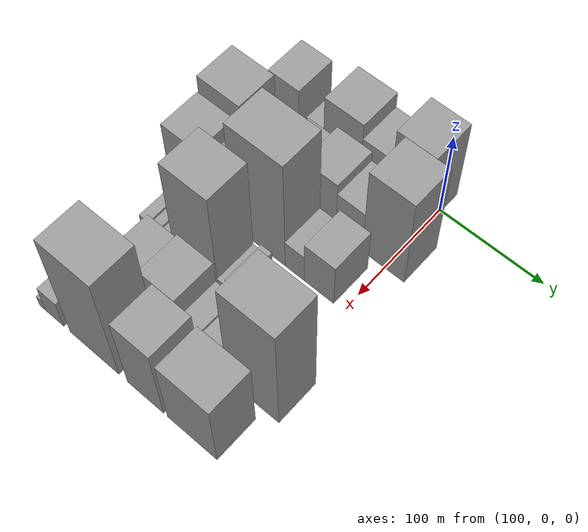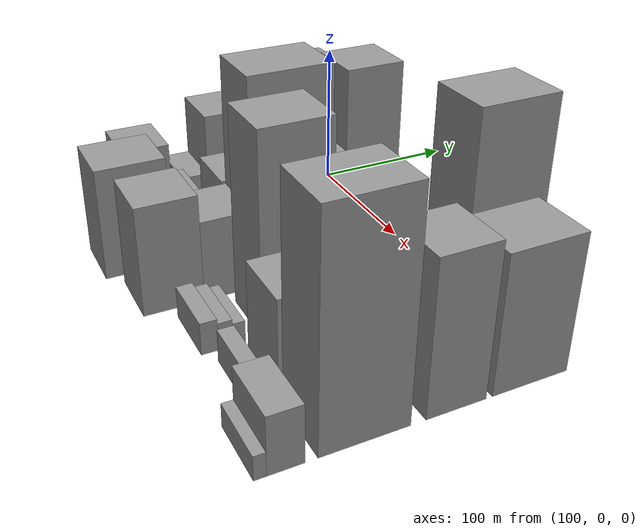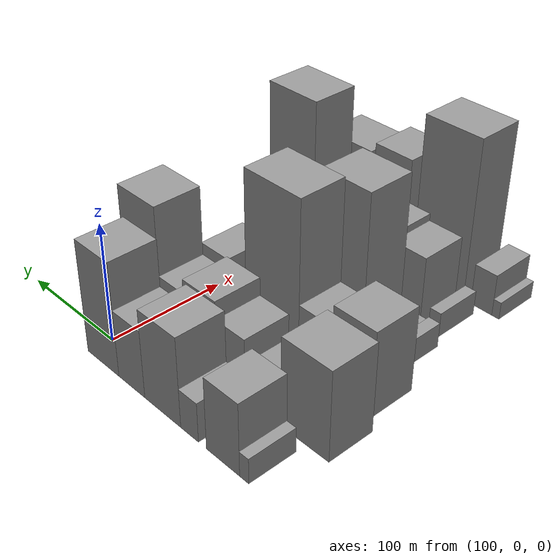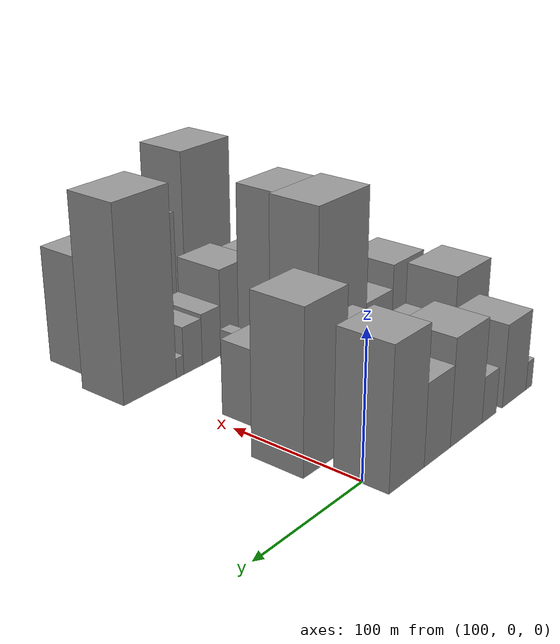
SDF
<sdf version="1.6">
 <world name="default">
  <model name="building_19">
   <static>1</static>
   <pose>100.0000 -166.8143 0 0.000000 0.000000 0.000000</pose>
   <link name="link">
    <pose>0 0 10.50 0 0 0</pose>
    <collision name="collision"><geometry><box><size>40.0000 8.5957 21.0000</size></box></geometry></collision>
    <visual name="visual">
     <cast_shadows>0</cast_shadows>
     <geometry><box><size>40.0000 8.5957 21.0000</size></box></geometry>
     <material>
      <script>
       <uri>model://grey_wall/materials/scripts</uri>
       <uri>model://grey_wall/materials/textures</uri>
       <name>vrc/grey_wall</name>
      </script>
     </material>
    </visual>
   </link>
  </model>
  <model name="building_20">
   <static>1</static>
   <pose>100.0000 -146.4526 0 0.000000 0.000000 0.000000</pose>
   <link name="link">
    <pose>0 0 30.00 0 0 0</pose>
    <collision name="collision"><geometry><box><size>40.0000 32.1276 60.0000</size></box></geometry></collision>
    <visual name="visual">
     <cast_shadows>0</cast_shadows>
     <geometry><box><size>40.0000 32.1276 60.0000</size></box></geometry>
     <material>
      <script>
       <uri>model://grey_wall/materials/scripts</uri>
       <uri>model://grey_wall/materials/textures</uri>
       <name>vrc/grey_wall</name>
      </script>
     </material>
    </visual>
   </link>
  </model>
  <model name="building_21">
   <static>1</static>
   <pose>100.0000 -113.3025 0 0.000000 0.000000 0.000000</pose>
   <link name="link">
    <pose>0 0 16.50 0 0 0</pose>
    <collision name="collision"><geometry><box><size>40.0000 18.1728 33.0000</size></box></geometry></collision>
    <visual name="visual">
     <cast_shadows>0</cast_shadows>
     <geometry><box><size>40.0000 18.1728 33.0000</size></box></geometry>
     <material>
      <script>
       <uri>model://grey_wall/materials/scripts</uri>
       <uri>model://grey_wall/materials/textures</uri>
       <name>vrc/grey_wall</name>
      </script>
     </material>
    </visual>
   </link>
  </model>
  <model name="building_22">
   <static>1</static>
   <pose>100.0000 -84.8160 0 0.000000 0.000000 0.000000</pose>
   <link name="link">
    <pose>0 0 37.50 0 0 0</pose>
    <collision name="collision"><geometry><box><size>40.0000 38.8002 75.0000</size></box></geometry></collision>
    <visual name="visual">
     <cast_shadows>0</cast_shadows>
     <geometry><box><size>40.0000 38.8002 75.0000</size></box></geometry>
     <material>
      <script>
       <uri>model://grey_wall/materials/scripts</uri>
       <uri>model://grey_wall/materials/textures</uri>
       <name>vrc/grey_wall</name>
      </script>
     </material>
    </visual>
   </link>
  </model>
  <model name="building_23">
   <static>1</static>
   <pose>100.0000 -50.5812 0 0.000000 0.000000 0.000000</pose>
   <link name="link">
    <pose>0 0 28.50 0 0 0</pose>
    <collision name="collision"><geometry><box><size>40.0000 29.6695 57.0000</size></box></geometry></collision>
    <visual name="visual">
     <cast_shadows>0</cast_shadows>
     <geometry><box><size>40.0000 29.6695 57.0000</size></box></geometry>
     <material>
      <script>
       <uri>model://grey_wall/materials/scripts</uri>
       <uri>model://grey_wall/materials/textures</uri>
       <name>vrc/grey_wall</name>
      </script>
     </material>
    </visual>
   </link>
  </model>
  <model name="building_24">
   <static>1</static>
   <pose>100.0000 -17.0833 0 0.000000 0.000000 0.000000</pose>
   <link name="link">
    <pose>0 0 48.00 0 0 0</pose>
    <collision name="collision"><geometry><box><size>40.0000 37.3264 96.0000</size></box></geometry></collision>
    <visual name="visual">
     <cast_shadows>0</cast_shadows>
     <geometry><box><size>40.0000 37.3264 96.0000</size></box></geometry>
     <material>
      <script>
       <uri>model://grey_wall/materials/scripts</uri>
       <uri>model://grey_wall/materials/textures</uri>
       <name>vrc/grey_wall</name>
      </script>
     </material>
    </visual>
   </link>
  </model>
  <model name="building_63">
   <static>1</static>
   <pose>149.0000 -169.5658 0 0.000000 0.000000 0.000000</pose>
   <link name="link">
    <pose>0 0 37.50 0 0 0</pose>
    <collision name="collision"><geometry><box><size>40.0000 44.2023 75.0000</size></box></geometry></collision>
    <visual name="visual">
     <cast_shadows>0</cast_shadows>
     <geometry><box><size>40.0000 44.2023 75.0000</size></box></geometry>
     <material>
      <script>
       <uri>model://grey_wall/materials/scripts</uri>
       <uri>model://grey_wall/materials/textures</uri>
       <name>vrc/grey_wall</name>
      </script>
     </material>
    </visual>
   </link>
  </model>
  <model name="building_64">
   <static>1</static>
   <pose>149.0000 -136.0340 0 0.000000 0.000000 0.000000</pose>
   <link name="link">
    <pose>0 0 22.50 0 0 0</pose>
    <collision name="collision"><geometry><box><size>40.0000 22.8614 45.0000</size></box></geometry></collision>
    <visual name="visual">
     <cast_shadows>0</cast_shadows>
     <geometry><box><size>40.0000 22.8614 45.0000</size></box></geometry>
     <material>
      <script>
       <uri>model://grey_wall/materials/scripts</uri>
       <uri>model://grey_wall/materials/textures</uri>
       <name>vrc/grey_wall</name>
      </script>
     </material>
    </visual>
   </link>
  </model>
  <model name="building_65">
   <static>1</static>
   <pose>149.0000 -118.4109 0 0.000000 0.000000 0.000000</pose>
   <link name="link">
    <pose>0 0 13.50 0 0 0</pose>
    <collision name="collision"><geometry><box><size>40.0000 12.3848 27.0000</size></box></geometry></collision>
    <visual name="visual">
     <cast_shadows>0</cast_shadows>
     <geometry><box><size>40.0000 12.3848 27.0000</size></box></geometry>
     <material>
      <script>
       <uri>model://grey_wall/materials/scripts</uri>
       <uri>model://grey_wall/materials/textures</uri>
       <name>vrc/grey_wall</name>
      </script>
     </material>
    </visual>
   </link>
  </model>
  <model name="building_66">
   <static>1</static>
   <pose>149.0000 -97.8057 0 0.000000 0.000000 0.000000</pose>
   <link name="link">
    <pose>0 0 25.50 0 0 0</pose>
    <collision name="collision"><geometry><box><size>40.0000 28.8256 51.0000</size></box></geometry></collision>
    <visual name="visual">
     <cast_shadows>0</cast_shadows>
     <geometry><box><size>40.0000 28.8256 51.0000</size></box></geometry>
     <material>
      <script>
       <uri>model://grey_wall/materials/scripts</uri>
       <uri>model://grey_wall/materials/textures</uri>
       <name>vrc/grey_wall</name>
      </script>
     </material>
    </visual>
   </link>
  </model>
  <model name="building_67">
   <static>1</static>
   <pose>149.0000 -66.2988 0 0.000000 0.000000 0.000000</pose>
   <link name="link">
    <pose>0 0 33.00 0 0 0</pose>
    <collision name="collision"><geometry><box><size>40.0000 34.1881 66.0000</size></box></geometry></collision>
    <visual name="visual">
     <cast_shadows>0</cast_shadows>
     <geometry><box><size>40.0000 34.1881 66.0000</size></box></geometry>
     <material>
      <script>
       <uri>model://grey_wall/materials/scripts</uri>
       <uri>model://grey_wall/materials/textures</uri>
       <name>vrc/grey_wall</name>
      </script>
     </material>
    </visual>
   </link>
  </model>
  <model name="building_68">
   <static>1</static>
   <pose>149.0000 -35.6842 0 0.000000 0.000000 0.000000</pose>
   <link name="link">
    <pose>0 0 27.00 0 0 0</pose>
    <collision name="collision"><geometry><box><size>40.0000 27.0412 54.0000</size></box></geometry></collision>
    <visual name="visual">
     <cast_shadows>0</cast_shadows>
     <geometry><box><size>40.0000 27.0412 54.0000</size></box></geometry>
     <material>
      <script>
       <uri>model://grey_wall/materials/scripts</uri>
       <uri>model://grey_wall/materials/textures</uri>
       <name>vrc/grey_wall</name>
      </script>
     </material>
    </visual>
   </link>
  </model>
  <model name="building_69">
   <static>1</static>
   <pose>149.0000 -1.4894 0 0.000000 0.000000 0.000000</pose>
   <link name="link">
    <pose>0 0 55.50 0 0 0</pose>
    <collision name="collision"><geometry><box><size>40.0000 41.3484 111.0000</size></box></geometry></collision>
    <visual name="visual">
     <cast_shadows>0</cast_shadows>
     <geometry><box><size>40.0000 41.3484 111.0000</size></box></geometry>
     <material>
      <script>
       <uri>model://grey_wall/materials/scripts</uri>
       <uri>model://grey_wall/materials/textures</uri>
       <name>vrc/grey_wall</name>
      </script>
     </material>
    </visual>
   </link>
  </model>
  <model name="building_116">
   <static>1</static>
   <pose>198.0000 -163.3867 0 0.000000 0.000000 0.000000</pose>
   <link name="link">
    <pose>0 0 36.00 0 0 0</pose>
    <collision name="collision"><geometry><box><size>40.0000 37.8140 72.0000</size></box></geometry></collision>
    <visual name="visual">
     <cast_shadows>0</cast_shadows>
     <geometry><box><size>40.0000 37.8140 72.0000</size></box></geometry>
     <material>
      <script>
       <uri>model://grey_wall/materials/scripts</uri>
       <uri>model://grey_wall/materials/textures</uri>
       <name>vrc/grey_wall</name>
      </script>
     </material>
    </visual>
   </link>
  </model>
  <model name="building_117">
   <static>1</static>
   <pose>198.0000 -128.5508 0 0.000000 0.000000 0.000000</pose>
   <link name="link">
    <pose>0 0 27.00 0 0 0</pose>
    <collision name="collision"><geometry><box><size>40.0000 31.8577 54.0000</size></box></geometry></collision>
    <visual name="visual">
     <cast_shadows>0</cast_shadows>
     <geometry><box><size>40.0000 31.8577 54.0000</size></box></geometry>
     <material>
      <script>
       <uri>model://grey_wall/materials/scripts</uri>
       <uri>model://grey_wall/materials/textures</uri>
       <name>vrc/grey_wall</name>
      </script>
     </material>
    </visual>
   </link>
  </model>
  <model name="building_118">
   <static>1</static>
   <pose>198.0000 -85.4054 0 0.000000 0.000000 0.000000</pose>
   <link name="link">
    <pose>0 0 69.00 0 0 0</pose>
    <collision name="collision"><geometry><box><size>40.0000 54.4332 138.0000</size></box></geometry></collision>
    <visual name="visual">
     <cast_shadows>0</cast_shadows>
     <geometry><box><size>40.0000 54.4332 138.0000</size></box></geometry>
     <material>
      <script>
       <uri>model://grey_wall/materials/scripts</uri>
       <uri>model://grey_wall/materials/textures</uri>
       <name>vrc/grey_wall</name>
      </script>
     </material>
    </visual>
   </link>
  </model>
  <model name="building_119">
   <static>1</static>
   <pose>198.0000 -48.5401 0 0.000000 0.000000 0.000000</pose>
   <link name="link">
    <pose>0 0 18.00 0 0 0</pose>
    <collision name="collision"><geometry><box><size>40.0000 19.2974 36.0000</size></box></geometry></collision>
    <visual name="visual">
     <cast_shadows>0</cast_shadows>
     <geometry><box><size>40.0000 19.2974 36.0000</size></box></geometry>
     <material>
      <script>
       <uri>model://grey_wall/materials/scripts</uri>
       <uri>model://grey_wall/materials/textures</uri>
       <name>vrc/grey_wall</name>
      </script>
     </material>
    </visual>
   </link>
  </model>
  <model name="building_120">
   <static>1</static>
   <pose>198.0000 -24.1284 0 0.000000 0.000000 0.000000</pose>
   <link name="link">
    <pose>0 0 27.00 0 0 0</pose>
    <collision name="collision"><geometry><box><size>40.0000 29.5259 54.0000</size></box></geometry></collision>
    <visual name="visual">
     <cast_shadows>0</cast_shadows>
     <geometry><box><size>40.0000 29.5259 54.0000</size></box></geometry>
     <material>
      <script>
       <uri>model://grey_wall/materials/scripts</uri>
       <uri>model://grey_wall/materials/textures</uri>
       <name>vrc/grey_wall</name>
      </script>
     </material>
    </visual>
   </link>
  </model>
  <model name="building_165">
   <static>1</static>
   <pose>247.0000 -159.1917 0 0.000000 0.000000 0.000000</pose>
   <link name="link">
    <pose>0 0 10.50 0 0 0</pose>
    <collision name="collision"><geometry><box><size>40.0000 10.1485 21.0000</size></box></geometry></collision>
    <visual name="visual">
     <cast_shadows>0</cast_shadows>
     <geometry><box><size>40.0000 10.1485 21.0000</size></box></geometry>
     <material>
      <script>
       <uri>model://grey_wall/materials/scripts</uri>
       <uri>model://grey_wall/materials/textures</uri>
       <name>vrc/grey_wall</name>
      </script>
     </material>
    </visual>
   </link>
  </model>
  <model name="building_166">
   <static>1</static>
   <pose>247.0000 -149.6743 0 0.000000 0.000000 0.000000</pose>
   <link name="link">
    <pose>0 0 9.00 0 0 0</pose>
    <collision name="collision"><geometry><box><size>40.0000 8.8861 18.0000</size></box></geometry></collision>
    <visual name="visual">
     <cast_shadows>0</cast_shadows>
     <geometry><box><size>40.0000 8.8861 18.0000</size></box></geometry>
     <material>
      <script>
       <uri>model://grey_wall/materials/scripts</uri>
       <uri>model://grey_wall/materials/textures</uri>
       <name>vrc/grey_wall</name>
      </script>
     </material>
    </visual>
   </link>
  </model>
  <model name="building_167">
   <static>1</static>
   <pose>247.0000 -141.5087 0 0.000000 0.000000 0.000000</pose>
   <link name="link">
    <pose>0 0 7.50 0 0 0</pose>
    <collision name="collision"><geometry><box><size>40.0000 7.4452 15.0000</size></box></geometry></collision>
    <visual name="visual">
     <cast_shadows>0</cast_shadows>
     <geometry><box><size>40.0000 7.4452 15.0000</size></box></geometry>
     <material>
      <script>
       <uri>model://grey_wall/materials/scripts</uri>
       <uri>model://grey_wall/materials/textures</uri>
       <name>vrc/grey_wall</name>
      </script>
     </material>
    </visual>
   </link>
  </model>
  <model name="building_168">
   <static>1</static>
   <pose>247.0000 -105.0985 0 0.000000 0.000000 0.000000</pose>
   <link name="link">
    <pose>0 0 64.50 0 0 0</pose>
    <collision name="collision"><geometry><box><size>40.0000 45.3751 129.0000</size></box></geometry></collision>
    <visual name="visual">
     <cast_shadows>0</cast_shadows>
     <geometry><box><size>40.0000 45.3751 129.0000</size></box></geometry>
     <material>
      <script>
       <uri>model://grey_wall/materials/scripts</uri>
       <uri>model://grey_wall/materials/textures</uri>
       <name>vrc/grey_wall</name>
      </script>
     </material>
    </visual>
   </link>
  </model>
  <model name="building_169">
   <static>1</static>
   <pose>247.0000 -78.2397 0 0.000000 0.000000 0.000000</pose>
   <link name="link">
    <pose>0 0 9.00 0 0 0</pose>
    <collision name="collision"><geometry><box><size>40.0000 8.3426 18.0000</size></box></geometry></collision>
    <visual name="visual">
     <cast_shadows>0</cast_shadows>
     <geometry><box><size>40.0000 8.3426 18.0000</size></box></geometry>
     <material>
      <script>
       <uri>model://grey_wall/materials/scripts</uri>
       <uri>model://grey_wall/materials/textures</uri>
       <name>vrc/grey_wall</name>
      </script>
     </material>
    </visual>
   </link>
  </model>
  <model name="building_170">
   <static>1</static>
   <pose>247.0000 -68.4875 0 0.000000 0.000000 0.000000</pose>
   <link name="link">
    <pose>0 0 13.50 0 0 0</pose>
    <collision name="collision"><geometry><box><size>40.0000 11.1616 27.0000</size></box></geometry></collision>
    <visual name="visual">
     <cast_shadows>0</cast_shadows>
     <geometry><box><size>40.0000 11.1616 27.0000</size></box></geometry>
     <material>
      <script>
       <uri>model://grey_wall/materials/scripts</uri>
       <uri>model://grey_wall/materials/textures</uri>
       <name>vrc/grey_wall</name>
      </script>
     </material>
    </visual>
   </link>
  </model>
  <model name="building_207">
   <static>1</static>
   <pose>296.0000 -152.7512 0 0.000000 0.000000 0.000000</pose>
   <link name="link">
    <pose>0 0 10.50 0 0 0</pose>
    <collision name="collision"><geometry><box><size>40.0000 9.9239 21.0000</size></box></geometry></collision>
    <visual name="visual">
     <cast_shadows>0</cast_shadows>
     <geometry><box><size>40.0000 9.9239 21.0000</size></box></geometry>
     <material>
      <script>
       <uri>model://grey_wall/materials/scripts</uri>
       <uri>model://grey_wall/materials/textures</uri>
       <name>vrc/grey_wall</name>
      </script>
     </material>
    </visual>
   </link>
  </model>
  <model name="building_208">
   <static>1</static>
   <pose>296.0000 -124.3588 0 0.000000 0.000000 0.000000</pose>
   <link name="link">
    <pose>0 0 30.00 0 0 0</pose>
    <collision name="collision"><geometry><box><size>40.0000 30.8609 60.0000</size></box></geometry></collision>
    <visual name="visual">
     <cast_shadows>0</cast_shadows>
     <geometry><box><size>40.0000 30.8609 60.0000</size></box></geometry>
     <material>
      <script>
       <uri>model://grey_wall/materials/scripts</uri>
       <uri>model://grey_wall/materials/textures</uri>
       <name>vrc/grey_wall</name>
      </script>
     </material>
    </visual>
   </link>
  </model>
  <model name="building_209">
   <static>1</static>
   <pose>296.0000 -91.1146 0 0.000000 0.000000 0.000000</pose>
   <link name="link">
    <pose>0 0 33.00 0 0 0</pose>
    <collision name="collision"><geometry><box><size>40.0000 35.6274 66.0000</size></box></geometry></collision>
    <visual name="visual">
     <cast_shadows>0</cast_shadows>
     <geometry><box><size>40.0000 35.6274 66.0000</size></box></geometry>
     <material>
      <script>
       <uri>model://grey_wall/materials/scripts</uri>
       <uri>model://grey_wall/materials/textures</uri>
       <name>vrc/grey_wall</name>
      </script>
     </material>
    </visual>
   </link>
  </model>
  <model name="building_210">
   <static>1</static>
   <pose>296.0000 -63.4068 0 0.000000 0.000000 0.000000</pose>
   <link name="link">
    <pose>0 0 19.50 0 0 0</pose>
    <collision name="collision"><geometry><box><size>40.0000 19.7883 39.0000</size></box></geometry></collision>
    <visual name="visual">
     <cast_shadows>0</cast_shadows>
     <geometry><box><size>40.0000 19.7883 39.0000</size></box></geometry>
     <material>
      <script>
       <uri>model://grey_wall/materials/scripts</uri>
       <uri>model://grey_wall/materials/textures</uri>
       <name>vrc/grey_wall</name>
      </script>
     </material>
    </visual>
   </link>
  </model>
  <model name="building_211">
   <static>1</static>
   <pose>296.0000 -44.0047 0 0.000000 0.000000 0.000000</pose>
   <link name="link">
    <pose>0 0 18.00 0 0 0</pose>
    <collision name="collision"><geometry><box><size>40.0000 19.0159 36.0000</size></box></geometry></collision>
    <visual name="visual">
     <cast_shadows>0</cast_shadows>
     <geometry><box><size>40.0000 19.0159 36.0000</size></box></geometry>
     <material>
      <script>
       <uri>model://grey_wall/materials/scripts</uri>
       <uri>model://grey_wall/materials/textures</uri>
       <name>vrc/grey_wall</name>
      </script>
     </material>
    </visual>
   </link>
  </model>
  <model name="building_212">
   <static>1</static>
   <pose>296.0000 -30.7629 0 0.000000 0.000000 0.000000</pose>
   <link name="link">
    <pose>0 0 7.50 0 0 0</pose>
    <collision name="collision"><geometry><box><size>40.0000 7.4677 15.0000</size></box></geometry></collision>
    <visual name="visual">
     <cast_shadows>0</cast_shadows>
     <geometry><box><size>40.0000 7.4677 15.0000</size></box></geometry>
     <material>
      <script>
       <uri>model://grey_wall/materials/scripts</uri>
       <uri>model://grey_wall/materials/textures</uri>
       <name>vrc/grey_wall</name>
      </script>
     </material>
    </visual>
   </link>
  </model>
  <model name="building_213">
   <static>1</static>
   <pose>296.0000 -1.9973 0 0.000000 0.000000 0.000000</pose>
   <link name="link">
    <pose>0 0 70.50 0 0 0</pose>
    <collision name="collision"><geometry><box><size>40.0000 50.0634 141.0000</size></box></geometry></collision>
    <visual name="visual">
     <cast_shadows>0</cast_shadows>
     <geometry><box><size>40.0000 50.0634 141.0000</size></box></geometry>
     <material>
      <script>
       <uri>model://grey_wall/materials/scripts</uri>
       <uri>model://grey_wall/materials/textures</uri>
       <name>vrc/grey_wall</name>
      </script>
     </material>
    </visual>
   </link>
  </model>
  <model name="building_260">
   <static>1</static>
   <pose>345.0000 -171.3745 0 0.000000 0.000000 0.000000</pose>
   <link name="link">
    <pose>0 0 7.50 0 0 0</pose>
    <collision name="collision"><geometry><box><size>40.0000 6.6425 15.0000</size></box></geometry></collision>
    <visual name="visual">
     <cast_shadows>0</cast_shadows>
     <geometry><box><size>40.0000 6.6425 15.0000</size></box></geometry>
     <material>
      <script>
       <uri>model://grey_wall/materials/scripts</uri>
       <uri>model://grey_wall/materials/textures</uri>
       <name>vrc/grey_wall</name>
      </script>
     </material>
    </visual>
   </link>
  </model>
  <model name="building_261">
   <static>1</static>
   <pose>345.0000 -158.1478 0 0.000000 0.000000 0.000000</pose>
   <link name="link">
    <pose>0 0 18.00 0 0 0</pose>
    <collision name="collision"><geometry><box><size>40.0000 19.8108 36.0000</size></box></geometry></collision>
    <visual name="visual">
     <cast_shadows>0</cast_shadows>
     <geometry><box><size>40.0000 19.8108 36.0000</size></box></geometry>
     <material>
      <script>
       <uri>model://grey_wall/materials/scripts</uri>
       <uri>model://grey_wall/materials/textures</uri>
       <name>vrc/grey_wall</name>
      </script>
     </material>
    </visual>
   </link>
  </model>
  <model name="building_262">
   <static>1</static>
   <pose>345.0000 -115.4501 0 0.000000 0.000000 0.000000</pose>
   <link name="link">
    <pose>0 0 69.00 0 0 0</pose>
    <collision name="collision"><geometry><box><size>40.0000 51.5847 138.0000</size></box></geometry></collision>
    <visual name="visual">
     <cast_shadows>0</cast_shadows>
     <geometry><box><size>40.0000 51.5847 138.0000</size></box></geometry>
     <material>
      <script>
       <uri>model://grey_wall/materials/scripts</uri>
       <uri>model://grey_wall/materials/textures</uri>
       <name>vrc/grey_wall</name>
      </script>
     </material>
    </visual>
   </link>
  </model>
  <model name="building_263">
   <static>1</static>
   <pose>345.0000 -62.3303 0 0.000000 0.000000 0.000000</pose>
   <link name="link">
    <pose>0 0 48.00 0 0 0</pose>
    <collision name="collision"><geometry><box><size>40.0000 36.6548 96.0000</size></box></geometry></collision>
    <visual name="visual">
     <cast_shadows>0</cast_shadows>
     <geometry><box><size>40.0000 36.6548 96.0000</size></box></geometry>
     <material>
      <script>
       <uri>model://grey_wall/materials/scripts</uri>
       <uri>model://grey_wall/materials/textures</uri>
       <name>vrc/grey_wall</name>
      </script>
     </material>
    </visual>
   </link>
  </model>
  <model name="building_264">
   <static>1</static>
   <pose>345.0000 -15.6384 0 0.000000 0.000000 0.000000</pose>
   <link name="link">
    <pose>0 0 43.50 0 0 0</pose>
    <collision name="collision"><geometry><box><size>40.0000 48.7291 87.0000</size></box></geometry></collision>
    <visual name="visual">
     <cast_shadows>0</cast_shadows>
     <geometry><box><size>40.0000 48.7291 87.0000</size></box></geometry>
     <material>
      <script>
       <uri>model://grey_wall/materials/scripts</uri>
       <uri>model://grey_wall/materials/textures</uri>
       <name>vrc/grey_wall</name>
      </script>
     </material>
    </visual>
   </link>
  </model>
 </world>
</sdf>
